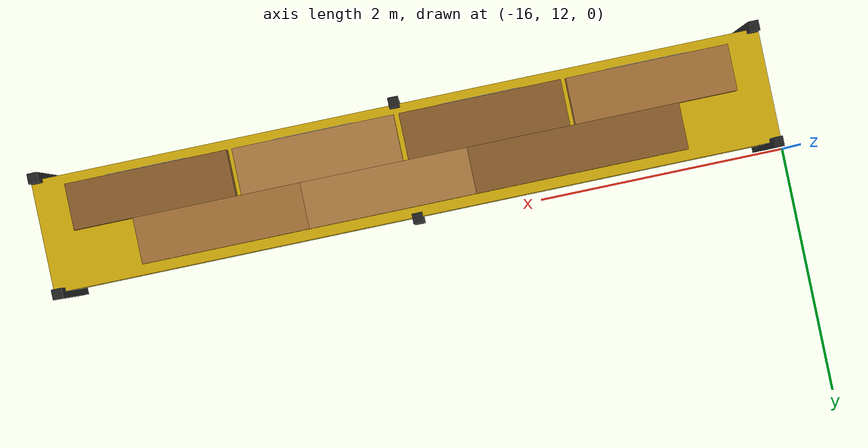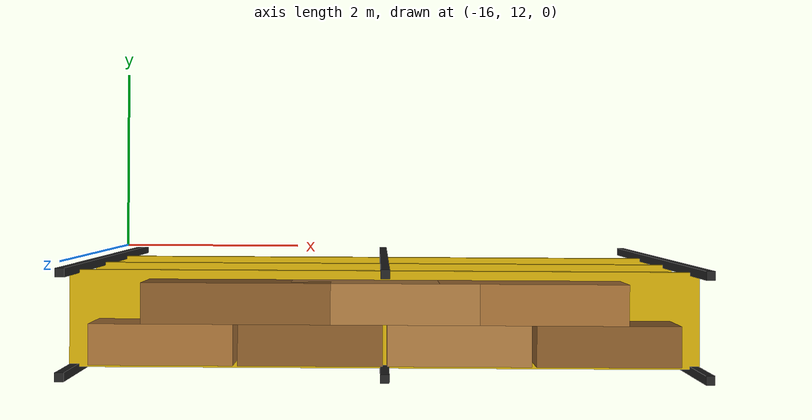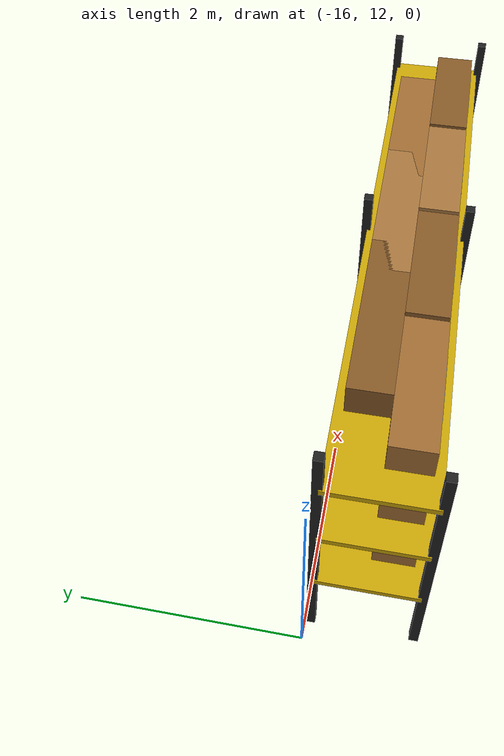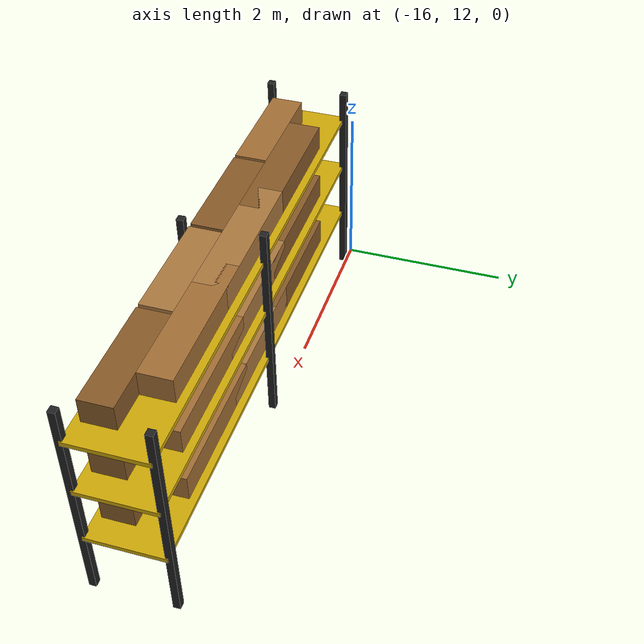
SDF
<sdf version="1.6">
 <world name="aws_industrial_warehouse">
  <model name="shelf_N2">
   <static>true</static>
   <pose>-13 11.5 0 0 0 0</pose>
   <link name="pFL">
    <pose>-2.8 -0.45 1.25 0 0 0</pose>
    <collision name="c">
     <geometry><box><size>0.08 0.08 2.5</size></box></geometry>
     <surface><friction><ode><mu>1.0</mu><mu2>1.0</mu2></ode></friction></surface>
    </collision>
    <visual name="v">
     <geometry><box><size>0.08 0.08 2.5</size></box></geometry>
     <material><ambient>0.10 0.10 0.10 1</ambient><diffuse>0.13 0.13 0.13 1</diffuse></material>
    </visual>
   </link>
   <link name="pBL">
    <pose>-2.8 0.45 1.25 0 0 0</pose>
    <collision name="c">
     <geometry><box><size>0.08 0.08 2.5</size></box></geometry>
     <surface><friction><ode><mu>1.0</mu><mu2>1.0</mu2></ode></friction></surface>
    </collision>
    <visual name="v">
     <geometry><box><size>0.08 0.08 2.5</size></box></geometry>
     <material><ambient>0.10 0.10 0.10 1</ambient><diffuse>0.13 0.13 0.13 1</diffuse></material>
    </visual>
   </link>
   <link name="pFC">
    <pose>0.0 -0.45 1.25 0 0 0</pose>
    <collision name="c">
     <geometry><box><size>0.08 0.08 2.5</size></box></geometry>
     <surface><friction><ode><mu>1.0</mu><mu2>1.0</mu2></ode></friction></surface>
    </collision>
    <visual name="v">
     <geometry><box><size>0.08 0.08 2.5</size></box></geometry>
     <material><ambient>0.10 0.10 0.10 1</ambient><diffuse>0.13 0.13 0.13 1</diffuse></material>
    </visual>
   </link>
   <link name="pBC">
    <pose>0.0 0.45 1.25 0 0 0</pose>
    <collision name="c">
     <geometry><box><size>0.08 0.08 2.5</size></box></geometry>
     <surface><friction><ode><mu>1.0</mu><mu2>1.0</mu2></ode></friction></surface>
    </collision>
    <visual name="v">
     <geometry><box><size>0.08 0.08 2.5</size></box></geometry>
     <material><ambient>0.10 0.10 0.10 1</ambient><diffuse>0.13 0.13 0.13 1</diffuse></material>
    </visual>
   </link>
   <link name="pFR">
    <pose>2.8 -0.45 1.25 0 0 0</pose>
    <collision name="c">
     <geometry><box><size>0.08 0.08 2.5</size></box></geometry>
     <surface><friction><ode><mu>1.0</mu><mu2>1.0</mu2></ode></friction></surface>
    </collision>
    <visual name="v">
     <geometry><box><size>0.08 0.08 2.5</size></box></geometry>
     <material><ambient>0.10 0.10 0.10 1</ambient><diffuse>0.13 0.13 0.13 1</diffuse></material>
    </visual>
   </link>
   <link name="pBR">
    <pose>2.8 0.45 1.25 0 0 0</pose>
    <collision name="c">
     <geometry><box><size>0.08 0.08 2.5</size></box></geometry>
     <surface><friction><ode><mu>1.0</mu><mu2>1.0</mu2></ode></friction></surface>
    </collision>
    <visual name="v">
     <geometry><box><size>0.08 0.08 2.5</size></box></geometry>
     <material><ambient>0.10 0.10 0.10 1</ambient><diffuse>0.13 0.13 0.13 1</diffuse></material>
    </visual>
   </link>
   <link name="deck1">
    <pose>0 0 0.77 0 0 0</pose>
    <collision name="c">
     <geometry><box><size>5.7 0.88 0.05</size></box></geometry>
     <surface><friction><ode><mu>1.0</mu><mu2>1.0</mu2></ode></friction></surface>
    </collision>
    <visual name="v">
     <geometry><box><size>5.7 0.88 0.05</size></box></geometry>
     <material><ambient>0.70 0.55 0.02 1</ambient><diffuse>0.82 0.67 0.03 1</diffuse></material>
    </visual>
   </link>
   <link name="deck2">
    <pose>0 0 1.45 0 0 0</pose>
    <collision name="c">
     <geometry><box><size>5.7 0.88 0.05</size></box></geometry>
     <surface><friction><ode><mu>1.0</mu><mu2>1.0</mu2></ode></friction></surface>
    </collision>
    <visual name="v">
     <geometry><box><size>5.7 0.88 0.05</size></box></geometry>
     <material><ambient>0.70 0.55 0.02 1</ambient><diffuse>0.82 0.67 0.03 1</diffuse></material>
    </visual>
   </link>
   <link name="deck3">
    <pose>0 0 2.12 0 0 0</pose>
    <collision name="c">
     <geometry><box><size>5.7 0.88 0.05</size></box></geometry>
     <surface><friction><ode><mu>1.0</mu><mu2>1.0</mu2></ode></friction></surface>
    </collision>
    <visual name="v">
     <geometry><box><size>5.7 0.88 0.05</size></box></geometry>
     <material><ambient>0.70 0.55 0.02 1</ambient><diffuse>0.82 0.67 0.03 1</diffuse></material>
    </visual>
   </link>
   <link name="bF1_1">
    <pose>-1.95 -0.18 0.94 0 0 0</pose>
    <visual name="v">
     <geometry><box><size>1.26 0.36 0.28</size></box></geometry>
     <material><ambient>0.58 0.38 0.18 1</ambient><diffuse>0.65 0.44 0.21 1</diffuse></material>
    </visual>
   </link>
   <link name="lF1_1">
    <pose>-1.95 -0.363 0.97 0 0 0</pose>
    <visual name="v">
     <geometry><box><size>0.62 0.005 0.13</size></box></geometry>
     <material><ambient>0.76 0.76 0.74 1</ambient><diffuse>0.83 0.83 0.81 1</diffuse></material>
    </visual>
   </link>
   <link name="bF1_2">
    <pose>-0.65 -0.18 0.94 0 0 0</pose>
    <visual name="v">
     <geometry><box><size>1.26 0.36 0.28</size></box></geometry>
     <material><ambient>0.48 0.30 0.12 1</ambient><diffuse>0.54 0.36 0.16 1</diffuse></material>
    </visual>
   </link>
   <link name="lF1_2">
    <pose>-0.65 -0.363 0.97 0 0 0</pose>
    <visual name="v">
     <geometry><box><size>0.62 0.005 0.13</size></box></geometry>
     <material><ambient>0.76 0.76 0.74 1</ambient><diffuse>0.83 0.83 0.81 1</diffuse></material>
    </visual>
   </link>
   <link name="bF1_3">
    <pose>0.65 -0.18 0.94 0 0 0</pose>
    <visual name="v">
     <geometry><box><size>1.26 0.36 0.28</size></box></geometry>
     <material><ambient>0.62 0.43 0.22 1</ambient><diffuse>0.68 0.48 0.25 1</diffuse></material>
    </visual>
   </link>
   <link name="lF1_3">
    <pose>0.65 -0.363 0.97 0 0 0</pose>
    <visual name="v">
     <geometry><box><size>0.62 0.005 0.13</size></box></geometry>
     <material><ambient>0.76 0.76 0.74 1</ambient><diffuse>0.83 0.83 0.81 1</diffuse></material>
    </visual>
   </link>
   <link name="bF1_4">
    <pose>1.95 -0.18 0.94 0 0 0</pose>
    <visual name="v">
     <geometry><box><size>1.26 0.36 0.28</size></box></geometry>
     <material><ambient>0.48 0.30 0.12 1</ambient><diffuse>0.54 0.36 0.16 1</diffuse></material>
    </visual>
   </link>
   <link name="lF1_4">
    <pose>1.95 -0.363 0.97 0 0 0</pose>
    <visual name="v">
     <geometry><box><size>0.62 0.005 0.13</size></box></geometry>
     <material><ambient>0.76 0.76 0.74 1</ambient><diffuse>0.83 0.83 0.81 1</diffuse></material>
    </visual>
   </link>
   <link name="bB1_1">
    <pose>-1.3 0.18 0.94 0 0 0</pose>
    <visual name="v">
     <geometry><box><size>1.65 0.36 0.3</size></box></geometry>
     <material><ambient>0.48 0.30 0.12 1</ambient><diffuse>0.54 0.36 0.16 1</diffuse></material>
    </visual>
   </link>
   <link name="bB1_2">
    <pose>0.0 0.18 0.94 0 0 0</pose>
    <visual name="v">
     <geometry><box><size>1.65 0.36 0.3</size></box></geometry>
     <material><ambient>0.62 0.43 0.22 1</ambient><diffuse>0.68 0.48 0.25 1</diffuse></material>
    </visual>
   </link>
   <link name="bB1_3">
    <pose>1.3 0.18 0.94 0 0 0</pose>
    <visual name="v">
     <geometry><box><size>1.65 0.36 0.3</size></box></geometry>
     <material><ambient>0.58 0.38 0.18 1</ambient><diffuse>0.65 0.44 0.21 1</diffuse></material>
    </visual>
   </link>
   <link name="bF2_1">
    <pose>-1.95 -0.18 1.62 0 0 0</pose>
    <visual name="v">
     <geometry><box><size>1.26 0.36 0.32</size></box></geometry>
     <material><ambient>0.58 0.38 0.18 1</ambient><diffuse>0.65 0.44 0.21 1</diffuse></material>
    </visual>
   </link>
   <link name="lF2_1">
    <pose>-1.95 -0.363 1.6500000000000001 0 0 0</pose>
    <visual name="v">
     <geometry><box><size>0.62 0.005 0.13</size></box></geometry>
     <material><ambient>0.76 0.76 0.74 1</ambient><diffuse>0.83 0.83 0.81 1</diffuse></material>
    </visual>
   </link>
   <link name="bF2_2">
    <pose>-0.65 -0.18 1.62 0 0 0</pose>
    <visual name="v">
     <geometry><box><size>1.26 0.36 0.32</size></box></geometry>
     <material><ambient>0.48 0.30 0.12 1</ambient><diffuse>0.54 0.36 0.16 1</diffuse></material>
    </visual>
   </link>
   <link name="lF2_2">
    <pose>-0.65 -0.363 1.6500000000000001 0 0 0</pose>
    <visual name="v">
     <geometry><box><size>0.62 0.005 0.13</size></box></geometry>
     <material><ambient>0.76 0.76 0.74 1</ambient><diffuse>0.83 0.83 0.81 1</diffuse></material>
    </visual>
   </link>
   <link name="bF2_3">
    <pose>0.65 -0.18 1.62 0 0 0</pose>
    <visual name="v">
     <geometry><box><size>1.26 0.36 0.32</size></box></geometry>
     <material><ambient>0.62 0.43 0.22 1</ambient><diffuse>0.68 0.48 0.25 1</diffuse></material>
    </visual>
   </link>
   <link name="lF2_3">
    <pose>0.65 -0.363 1.6500000000000001 0 0 0</pose>
    <visual name="v">
     <geometry><box><size>0.62 0.005 0.13</size></box></geometry>
     <material><ambient>0.76 0.76 0.74 1</ambient><diffuse>0.83 0.83 0.81 1</diffuse></material>
    </visual>
   </link>
   <link name="bF2_4">
    <pose>1.95 -0.18 1.62 0 0 0</pose>
    <visual name="v">
     <geometry><box><size>1.26 0.36 0.32</size></box></geometry>
     <material><ambient>0.48 0.30 0.12 1</ambient><diffuse>0.54 0.36 0.16 1</diffuse></material>
    </visual>
   </link>
   <link name="lF2_4">
    <pose>1.95 -0.363 1.6500000000000001 0 0 0</pose>
    <visual name="v">
     <geometry><box><size>0.62 0.005 0.13</size></box></geometry>
     <material><ambient>0.76 0.76 0.74 1</ambient><diffuse>0.83 0.83 0.81 1</diffuse></material>
    </visual>
   </link>
   <link name="bB2_1">
    <pose>-1.3 0.18 1.62 0 0 0</pose>
    <visual name="v">
     <geometry><box><size>1.65 0.36 0.28</size></box></geometry>
     <material><ambient>0.48 0.30 0.12 1</ambient><diffuse>0.54 0.36 0.16 1</diffuse></material>
    </visual>
   </link>
   <link name="bB2_2">
    <pose>0.0 0.18 1.62 0 0 0</pose>
    <visual name="v">
     <geometry><box><size>1.65 0.36 0.28</size></box></geometry>
     <material><ambient>0.62 0.43 0.22 1</ambient><diffuse>0.68 0.48 0.25 1</diffuse></material>
    </visual>
   </link>
   <link name="bB2_3">
    <pose>1.3 0.18 1.62 0 0 0</pose>
    <visual name="v">
     <geometry><box><size>1.65 0.36 0.28</size></box></geometry>
     <material><ambient>0.58 0.38 0.18 1</ambient><diffuse>0.65 0.44 0.21 1</diffuse></material>
    </visual>
   </link>
   <link name="bF3_1">
    <pose>-1.95 -0.18 2.29 0 0 0</pose>
    <visual name="v">
     <geometry><box><size>1.26 0.36 0.28</size></box></geometry>
     <material><ambient>0.58 0.38 0.18 1</ambient><diffuse>0.65 0.44 0.21 1</diffuse></material>
    </visual>
   </link>
   <link name="lF3_1">
    <pose>-1.95 -0.363 2.32 0 0 0</pose>
    <visual name="v">
     <geometry><box><size>0.62 0.005 0.13</size></box></geometry>
     <material><ambient>0.76 0.76 0.74 1</ambient><diffuse>0.83 0.83 0.81 1</diffuse></material>
    </visual>
   </link>
   <link name="bF3_2">
    <pose>-0.65 -0.18 2.29 0 0 0</pose>
    <visual name="v">
     <geometry><box><size>1.26 0.36 0.28</size></box></geometry>
     <material><ambient>0.48 0.30 0.12 1</ambient><diffuse>0.54 0.36 0.16 1</diffuse></material>
    </visual>
   </link>
   <link name="lF3_2">
    <pose>-0.65 -0.363 2.32 0 0 0</pose>
    <visual name="v">
     <geometry><box><size>0.62 0.005 0.13</size></box></geometry>
     <material><ambient>0.76 0.76 0.74 1</ambient><diffuse>0.83 0.83 0.81 1</diffuse></material>
    </visual>
   </link>
   <link name="bF3_3">
    <pose>0.65 -0.18 2.29 0 0 0</pose>
    <visual name="v">
     <geometry><box><size>1.26 0.36 0.28</size></box></geometry>
     <material><ambient>0.62 0.43 0.22 1</ambient><diffuse>0.68 0.48 0.25 1</diffuse></material>
    </visual>
   </link>
   <link name="lF3_3">
    <pose>0.65 -0.363 2.32 0 0 0</pose>
    <visual name="v">
     <geometry><box><size>0.62 0.005 0.13</size></box></geometry>
     <material><ambient>0.76 0.76 0.74 1</ambient><diffuse>0.83 0.83 0.81 1</diffuse></material>
    </visual>
   </link>
   <link name="bF3_4">
    <pose>1.95 -0.18 2.29 0 0 0</pose>
    <visual name="v">
     <geometry><box><size>1.26 0.36 0.28</size></box></geometry>
     <material><ambient>0.48 0.30 0.12 1</ambient><diffuse>0.54 0.36 0.16 1</diffuse></material>
    </visual>
   </link>
   <link name="lF3_4">
    <pose>1.95 -0.363 2.32 0 0 0</pose>
    <visual name="v">
     <geometry><box><size>0.62 0.005 0.13</size></box></geometry>
     <material><ambient>0.76 0.76 0.74 1</ambient><diffuse>0.83 0.83 0.81 1</diffuse></material>
    </visual>
   </link>
   <link name="bB3_1">
    <pose>-1.3 0.18 2.29 0 0 0</pose>
    <visual name="v">
     <geometry><box><size>1.65 0.36 0.28</size></box></geometry>
     <material><ambient>0.48 0.30 0.12 1</ambient><diffuse>0.54 0.36 0.16 1</diffuse></material>
    </visual>
   </link>
   <link name="bB3_2">
    <pose>0.0 0.18 2.29 0 0 0</pose>
    <visual name="v">
     <geometry><box><size>1.65 0.36 0.28</size></box></geometry>
     <material><ambient>0.62 0.43 0.22 1</ambient><diffuse>0.68 0.48 0.25 1</diffuse></material>
    </visual>
   </link>
   <link name="bB3_3">
    <pose>1.3 0.18 2.29 0 0 0</pose>
    <visual name="v">
     <geometry><box><size>1.65 0.36 0.28</size></box></geometry>
     <material><ambient>0.58 0.38 0.18 1</ambient><diffuse>0.65 0.44 0.21 1</diffuse></material>
    </visual>
   </link>
  </model>
 </world>
</sdf>
